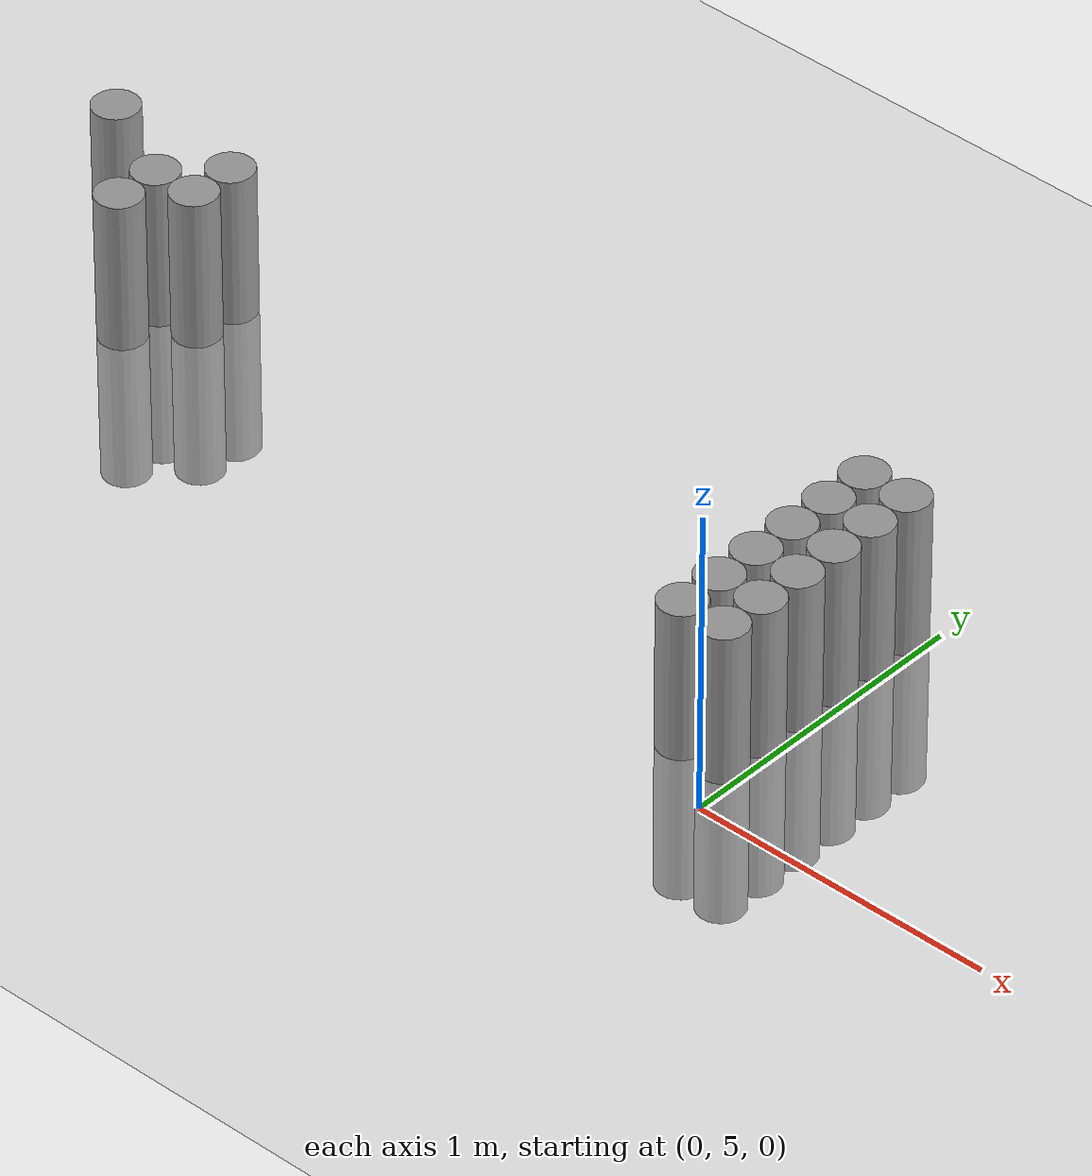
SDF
<sdf version="1.6">
 <world name="default">
  <model name="ground_plane">
   <static>1</static>
   <static>1</static>
   <link name="link">
    <collision name="collision">
     <geometry><plane><normal>0 0 1</normal><size>100 100</size></plane></geometry>
     <surface><friction><ode><mu>100</mu><mu2>50</mu2></ode></friction></surface>
    </collision>
    <visual name="visual">
     <cast_shadows>0</cast_shadows>
     <geometry><plane><normal>0 0 1</normal><size>100 100</size></plane></geometry>
     <material>
      <script><uri>file://media/materials/scripts/gazebo.material</uri><name>Gazebo/Grey</name></script>
     </material>
    </visual>
   </link>
  </model>
  <model name="unit_cylinder_172">
   <static>1</static>
   <pose>-2.925000 5.775000 0.000000 0.000000 0.000000 0.000000</pose>
   <link name="link">
    <inertial>
     <mass>1</mass>
     <inertia><ixx>0.145833</ixx><ixy>0</ixy><ixz>0</ixz><iyy>0.145833</iyy><iyz>0</iyz><izz>0.125</izz></inertia>
    </inertial>
    <collision name="collision">
     <geometry><cylinder><radius>0.075000</radius><length>1</length></cylinder></geometry>
    </collision>
    <visual name="visual">
     <geometry><cylinder><radius>0.075000</radius><length>1</length></cylinder></geometry>
     <material>
      <script><name>Gazebo/Grey</name><uri>file://media/materials/scripts/gazebo.material</uri></script>
     </material>
    </visual>
   </link>
  </model>
  <model name="unit_cylinder_184">
   <static>1</static>
   <pose>-2.625000 5.475000 0.000000 0.000000 0.000000 0.000000</pose>
   <link name="link">
    <inertial>
     <mass>1</mass>
     <inertia><ixx>0.145833</ixx><ixy>0</ixy><ixz>0</ixz><iyy>0.145833</iyy><iyz>0</iyz><izz>0.125</izz></inertia>
    </inertial>
    <collision name="collision">
     <geometry><cylinder><radius>0.075000</radius><length>1</length></cylinder></geometry>
    </collision>
    <visual name="visual">
     <geometry><cylinder><radius>0.075000</radius><length>1</length></cylinder></geometry>
     <material>
      <script><name>Gazebo/Grey</name><uri>file://media/materials/scripts/gazebo.material</uri></script>
     </material>
    </visual>
   </link>
  </model>
  <model name="unit_cylinder_185">
   <static>1</static>
   <pose>-2.625000 5.625000 0.000000 0.000000 0.000000 0.000000</pose>
   <link name="link">
    <inertial>
     <mass>1</mass>
     <inertia><ixx>0.145833</ixx><ixy>0</ixy><ixz>0</ixz><iyy>0.145833</iyy><iyz>0</iyz><izz>0.125</izz></inertia>
    </inertial>
    <collision name="collision">
     <geometry><cylinder><radius>0.075000</radius><length>1</length></cylinder></geometry>
    </collision>
    <visual name="visual">
     <geometry><cylinder><radius>0.075000</radius><length>1</length></cylinder></geometry>
     <material>
      <script><name>Gazebo/Grey</name><uri>file://media/materials/scripts/gazebo.material</uri></script>
     </material>
    </visual>
   </link>
  </model>
  <model name="unit_cylinder_191">
   <static>1</static>
   <pose>-2.475000 5.625000 0.000000 0.000000 0.000000 0.000000</pose>
   <link name="link">
    <inertial>
     <mass>1</mass>
     <inertia><ixx>0.145833</ixx><ixy>0</ixy><ixz>0</ixz><iyy>0.145833</iyy><iyz>0</iyz><izz>0.125</izz></inertia>
    </inertial>
    <collision name="collision">
     <geometry><cylinder><radius>0.075000</radius><length>1</length></cylinder></geometry>
    </collision>
    <visual name="visual">
     <geometry><cylinder><radius>0.075000</radius><length>1</length></cylinder></geometry>
     <material>
      <script><name>Gazebo/Grey</name><uri>file://media/materials/scripts/gazebo.material</uri></script>
     </material>
    </visual>
   </link>
  </model>
  <model name="unit_cylinder_192">
   <static>1</static>
   <pose>-2.475000 5.775000 0.000000 0.000000 0.000000 0.000000</pose>
   <link name="link">
    <inertial>
     <mass>1</mass>
     <inertia><ixx>0.145833</ixx><ixy>0</ixy><ixz>0</ixz><iyy>0.145833</iyy><iyz>0</iyz><izz>0.125</izz></inertia>
    </inertial>
    <collision name="collision">
     <geometry><cylinder><radius>0.075000</radius><length>1</length></cylinder></geometry>
    </collision>
    <visual name="visual">
     <geometry><cylinder><radius>0.075000</radius><length>1</length></cylinder></geometry>
     <material>
      <script><name>Gazebo/Grey</name><uri>file://media/materials/scripts/gazebo.material</uri></script>
     </material>
    </visual>
   </link>
  </model>
  <model name="unit_cylinder_224">
   <static>1</static>
   <pose>-0.225000 5.175000 0.000000 0.000000 0.000000 0.000000</pose>
   <link name="link">
    <inertial>
     <mass>1</mass>
     <inertia><ixx>0.145833</ixx><ixy>0</ixy><ixz>0</ixz><iyy>0.145833</iyy><iyz>0</iyz><izz>0.125</izz></inertia>
    </inertial>
    <collision name="collision">
     <geometry><cylinder><radius>0.075000</radius><length>1</length></cylinder></geometry>
    </collision>
    <visual name="visual">
     <geometry><cylinder><radius>0.075000</radius><length>1</length></cylinder></geometry>
     <material>
      <script><name>Gazebo/Grey</name><uri>file://media/materials/scripts/gazebo.material</uri></script>
     </material>
    </visual>
   </link>
  </model>
  <model name="unit_cylinder_225">
   <static>1</static>
   <pose>-0.225000 5.325000 0.000000 0.000000 0.000000 0.000000</pose>
   <link name="link">
    <inertial>
     <mass>1</mass>
     <inertia><ixx>0.145833</ixx><ixy>0</ixy><ixz>0</ixz><iyy>0.145833</iyy><iyz>0</iyz><izz>0.125</izz></inertia>
    </inertial>
    <collision name="collision">
     <geometry><cylinder><radius>0.075000</radius><length>1</length></cylinder></geometry>
    </collision>
    <visual name="visual">
     <geometry><cylinder><radius>0.075000</radius><length>1</length></cylinder></geometry>
     <material>
      <script><name>Gazebo/Grey</name><uri>file://media/materials/scripts/gazebo.material</uri></script>
     </material>
    </visual>
   </link>
  </model>
  <model name="unit_cylinder_226">
   <static>1</static>
   <pose>-0.225000 5.475000 0.000000 0.000000 0.000000 0.000000</pose>
   <link name="link">
    <inertial>
     <mass>1</mass>
     <inertia><ixx>0.145833</ixx><ixy>0</ixy><ixz>0</ixz><iyy>0.145833</iyy><iyz>0</iyz><izz>0.125</izz></inertia>
    </inertial>
    <collision name="collision">
     <geometry><cylinder><radius>0.075000</radius><length>1</length></cylinder></geometry>
    </collision>
    <visual name="visual">
     <geometry><cylinder><radius>0.075000</radius><length>1</length></cylinder></geometry>
     <material>
      <script><name>Gazebo/Grey</name><uri>file://media/materials/scripts/gazebo.material</uri></script>
     </material>
    </visual>
   </link>
  </model>
  <model name="unit_cylinder_227">
   <static>1</static>
   <pose>-0.225000 5.625000 0.000000 0.000000 0.000000 0.000000</pose>
   <link name="link">
    <inertial>
     <mass>1</mass>
     <inertia><ixx>0.145833</ixx><ixy>0</ixy><ixz>0</ixz><iyy>0.145833</iyy><iyz>0</iyz><izz>0.125</izz></inertia>
    </inertial>
    <collision name="collision">
     <geometry><cylinder><radius>0.075000</radius><length>1</length></cylinder></geometry>
    </collision>
    <visual name="visual">
     <geometry><cylinder><radius>0.075000</radius><length>1</length></cylinder></geometry>
     <material>
      <script><name>Gazebo/Grey</name><uri>file://media/materials/scripts/gazebo.material</uri></script>
     </material>
    </visual>
   </link>
  </model>
  <model name="unit_cylinder_228">
   <static>1</static>
   <pose>-0.225000 5.775000 0.000000 0.000000 0.000000 0.000000</pose>
   <link name="link">
    <inertial>
     <mass>1</mass>
     <inertia><ixx>0.145833</ixx><ixy>0</ixy><ixz>0</ixz><iyy>0.145833</iyy><iyz>0</iyz><izz>0.125</izz></inertia>
    </inertial>
    <collision name="collision">
     <geometry><cylinder><radius>0.075000</radius><length>1</length></cylinder></geometry>
    </collision>
    <visual name="visual">
     <geometry><cylinder><radius>0.075000</radius><length>1</length></cylinder></geometry>
     <material>
      <script><name>Gazebo/Grey</name><uri>file://media/materials/scripts/gazebo.material</uri></script>
     </material>
    </visual>
   </link>
  </model>
  <model name="unit_cylinder_229">
   <static>1</static>
   <pose>-0.225000 5.925000 0.000000 0.000000 0.000000 0.000000</pose>
   <link name="link">
    <inertial>
     <mass>1</mass>
     <inertia><ixx>0.145833</ixx><ixy>0</ixy><ixz>0</ixz><iyy>0.145833</iyy><iyz>0</iyz><izz>0.125</izz></inertia>
    </inertial>
    <collision name="collision">
     <geometry><cylinder><radius>0.075000</radius><length>1</length></cylinder></geometry>
    </collision>
    <visual name="visual">
     <geometry><cylinder><radius>0.075000</radius><length>1</length></cylinder></geometry>
     <material>
      <script><name>Gazebo/Grey</name><uri>file://media/materials/scripts/gazebo.material</uri></script>
     </material>
    </visual>
   </link>
  </model>
  <model name="unit_cylinder_234">
   <static>1</static>
   <pose>-0.075000 5.175000 0.000000 0.000000 0.000000 0.000000</pose>
   <link name="link">
    <inertial>
     <mass>1</mass>
     <inertia><ixx>0.145833</ixx><ixy>0</ixy><ixz>0</ixz><iyy>0.145833</iyy><iyz>0</iyz><izz>0.125</izz></inertia>
    </inertial>
    <collision name="collision">
     <geometry><cylinder><radius>0.075000</radius><length>1</length></cylinder></geometry>
    </collision>
    <visual name="visual">
     <geometry><cylinder><radius>0.075000</radius><length>1</length></cylinder></geometry>
     <material>
      <script><name>Gazebo/Grey</name><uri>file://media/materials/scripts/gazebo.material</uri></script>
     </material>
    </visual>
   </link>
  </model>
  <model name="unit_cylinder_235">
   <static>1</static>
   <pose>-0.075000 5.325000 0.000000 0.000000 0.000000 0.000000</pose>
   <link name="link">
    <inertial>
     <mass>1</mass>
     <inertia><ixx>0.145833</ixx><ixy>0</ixy><ixz>0</ixz><iyy>0.145833</iyy><iyz>0</iyz><izz>0.125</izz></inertia>
    </inertial>
    <collision name="collision">
     <geometry><cylinder><radius>0.075000</radius><length>1</length></cylinder></geometry>
    </collision>
    <visual name="visual">
     <geometry><cylinder><radius>0.075000</radius><length>1</length></cylinder></geometry>
     <material>
      <script><name>Gazebo/Grey</name><uri>file://media/materials/scripts/gazebo.material</uri></script>
     </material>
    </visual>
   </link>
  </model>
  <model name="unit_cylinder_236">
   <static>1</static>
   <pose>-0.075000 5.475000 0.000000 0.000000 0.000000 0.000000</pose>
   <link name="link">
    <inertial>
     <mass>1</mass>
     <inertia><ixx>0.145833</ixx><ixy>0</ixy><ixz>0</ixz><iyy>0.145833</iyy><iyz>0</iyz><izz>0.125</izz></inertia>
    </inertial>
    <collision name="collision">
     <geometry><cylinder><radius>0.075000</radius><length>1</length></cylinder></geometry>
    </collision>
    <visual name="visual">
     <geometry><cylinder><radius>0.075000</radius><length>1</length></cylinder></geometry>
     <material>
      <script><name>Gazebo/Grey</name><uri>file://media/materials/scripts/gazebo.material</uri></script>
     </material>
    </visual>
   </link>
  </model>
  <model name="unit_cylinder_237">
   <static>1</static>
   <pose>-0.075000 5.625000 0.000000 0.000000 0.000000 0.000000</pose>
   <link name="link">
    <inertial>
     <mass>1</mass>
     <inertia><ixx>0.145833</ixx><ixy>0</ixy><ixz>0</ixz><iyy>0.145833</iyy><iyz>0</iyz><izz>0.125</izz></inertia>
    </inertial>
    <collision name="collision">
     <geometry><cylinder><radius>0.075000</radius><length>1</length></cylinder></geometry>
    </collision>
    <visual name="visual">
     <geometry><cylinder><radius>0.075000</radius><length>1</length></cylinder></geometry>
     <material>
      <script><name>Gazebo/Grey</name><uri>file://media/materials/scripts/gazebo.material</uri></script>
     </material>
    </visual>
   </link>
  </model>
  <model name="unit_cylinder_238">
   <static>1</static>
   <pose>-0.075000 5.775000 0.000000 0.000000 0.000000 0.000000</pose>
   <link name="link">
    <inertial>
     <mass>1</mass>
     <inertia><ixx>0.145833</ixx><ixy>0</ixy><ixz>0</ixz><iyy>0.145833</iyy><iyz>0</iyz><izz>0.125</izz></inertia>
    </inertial>
    <collision name="collision">
     <geometry><cylinder><radius>0.075000</radius><length>1</length></cylinder></geometry>
    </collision>
    <visual name="visual">
     <geometry><cylinder><radius>0.075000</radius><length>1</length></cylinder></geometry>
     <material>
      <script><name>Gazebo/Grey</name><uri>file://media/materials/scripts/gazebo.material</uri></script>
     </material>
    </visual>
   </link>
  </model>
  <model name="unit_cylinder_239">
   <static>1</static>
   <pose>-0.075000 5.925000 0.000000 0.000000 0.000000 0.000000</pose>
   <link name="link">
    <inertial>
     <mass>1</mass>
     <inertia><ixx>0.145833</ixx><ixy>0</ixy><ixz>0</ixz><iyy>0.145833</iyy><iyz>0</iyz><izz>0.125</izz></inertia>
    </inertial>
    <collision name="collision">
     <geometry><cylinder><radius>0.075000</radius><length>1</length></cylinder></geometry>
    </collision>
    <visual name="visual">
     <geometry><cylinder><radius>0.075000</radius><length>1</length></cylinder></geometry>
     <material>
      <script><name>Gazebo/Grey</name><uri>file://media/materials/scripts/gazebo.material</uri></script>
     </material>
    </visual>
   </link>
  </model>
 </world>
</sdf>
